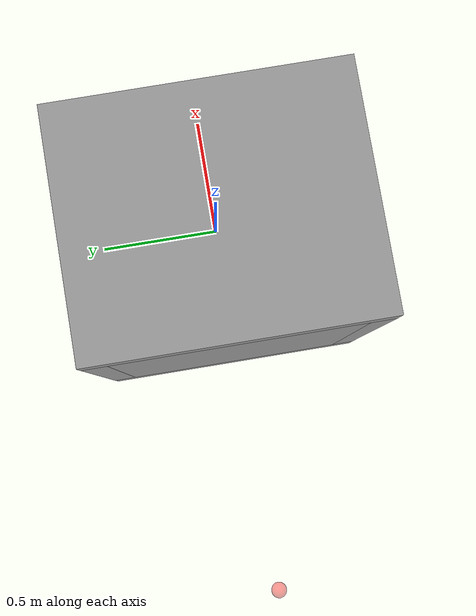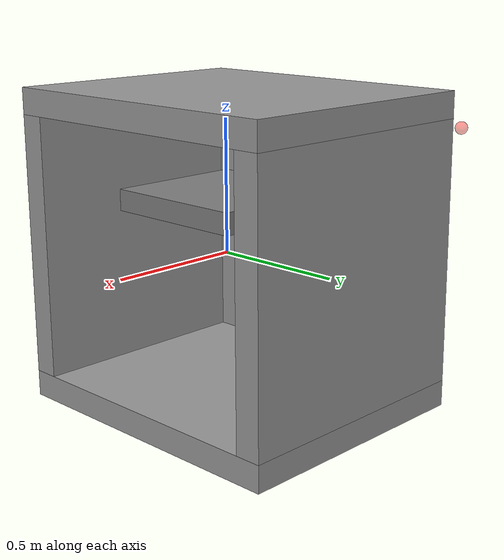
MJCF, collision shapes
<mujoco model="Skydio X2 scene">
  <include file="x2.xml"/>

  <!-- Target sphere -->
  <worldbody>
    <body name="goal" mocap="true" pos="-1.5 0 0.3">
      <site type="sphere" size=".03" rgba="1 0 0 0.4"  />
    </body>
  </worldbody>

  <worldbody>
    <geom name="frontwall" size="0.05 0.5 0.5" type="box" pos="-0.5 0 0" rgba ="0.6 0.6 0.6 0.5"/>
    <geom name="leftwall" size="0.5 0.05 0.5" type="box" pos="-0.05 0.55 0" rgba ="0.6 0.6 0.6 0.5"/>
    <geom name="rightwall" size="0.5 0.05 0.5" type="box" pos="-0.05 -0.55 0" rgba ="0.6 0.6 0.6 0.5"/>
    <geom name="topwall" size="0.5 0.6 0.05" type="box" pos="-0.05 0 0.55" rgba ="0.6 0.6 0.6 0.5"/>
    <geom name="bottomwall" size="0.5 0.6 0.05" type="box" pos="-0.05 0 -0.55" rgba ="0.6 0.6 0.6 0.5"/>
  </worldbody>

  <statistic center="0 0 0.1" extent="0.6" meansize=".05"/>

  <visual>
    <headlight diffuse="0.6 0.6 0.6" ambient="0.3 0.3 0.3" specular="0 0 0"/>
    <rgba haze="0.15 0.25 0.35 1"/>
    <global azimuth="-20" elevation="-20" ellipsoidinertia="true"/>
  </visual>

  <asset>
    <texture type="skybox" builtin="gradient" rgb1="0.3 0.5 0.7" rgb2="0 0 0" width="512" height="3072"/>
    <texture type="2d" name="groundplane" builtin="checker" mark="edge" rgb1="0.2 0.3 0.4" rgb2="0.1 0.2 0.3"
      markrgb="0.8 0.8 0.8" width="300" height="300"/>
    <material name="groundplane" texture="groundplane" texuniform="true" texrepeat="5 5" reflectance="0.2"/>
  </asset>

  <worldbody>
    <light pos="0 0 1.5" dir="0 0 -1" directional="true"/>
  </worldbody>

</mujoco>

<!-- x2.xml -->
<mujoco model="Skydio X2">
  <compiler autolimits="true" assetdir="assets"/>

  <option timestep="0.01" density="1.225" viscosity="1.8e-5"/>

  <default>
    <default class="x2">
      <geom mass="0"/>
      <motor ctrlrange="0 13"/>
      <mesh scale="0.01 0.01 0.01"/>
      <default class="visual">
        <geom group="2" type="mesh" contype="0" conaffinity="0"/>
      </default>
      <default class="collision">
        <!-- remove the body of the drone for contact since mujoco mjx does not support collision between cylinder and box as of July 2025 -->
        <geom group="3" type="box" contype="0" conaffinity="0"/>
        <default class="rotor">
          <geom type="ellipsoid" size=".13 .13 .01" contype="0" conaffinity="0"/>
        </default>
      </default>
      <site group="5"/>
    </default>
  </default>

  <asset>
    <texture type="2d" file="X2_lowpoly_texture_SpinningProps_1024.png"/>
    <material name="phong3SG" texture="X2_lowpoly_texture_SpinningProps_1024"/>
    <material name="invisible" rgba="0 0 0 0"/>

    <mesh class="x2" file="X2_lowpoly.obj"/>
  </asset>

  <worldbody>
    <light name="spotlight" mode="targetbodycom" target="x2" pos="0 -1 2"/>
    <body name="x2" pos="0 0 0.1" childclass="x2">
      <freejoint/>
      <camera name="track" pos="-1 0 .5" xyaxes="0 -1 0 1 0 2" mode="trackcom"/>
      <site name="imu" pos="0 0 .02"/>
      <geom material="phong3SG" mesh="X2_lowpoly" class="visual" quat="0 0 1 1"/>
      <geom class="collision" size=".06 .027 .02" pos=".04 0 .02"/>
      <geom class="collision" size=".06 .027 .02" pos=".04 0 .06"/>
      <geom class="collision" size=".05 .027 .02" pos="-.07 0 .065"/>
      <geom class="collision" size=".023 .017 .01" pos="-.137 .008 .065" quat="1 0 0 1"/>
      <geom name="rotor1" class="rotor" pos="-.14 -.18 .05" mass=".25"/>
      <geom name="rotor2" class="rotor" pos="-.14 .18 .05" mass=".25"/>
      <geom name="rotor3" class="rotor" pos=".14 .18 .08" mass=".25"/>
      <geom name="rotor4" class="rotor" pos=".14 -.18 .08" mass=".25"/>
      <geom size=".16 .04 .02" pos="0 0 0.02" type="ellipsoid" mass=".325" class="visual" material="invisible"/>
      <site name="thrust1" pos="-.14 -.18 .05"/>
      <site name="thrust2" pos="-.14 .18 .05"/>
      <site name="thrust3" pos=".14 .18 .08"/>
      <site name="thrust4" pos=".14 -.18 .08"/>
      <site name="tracking_site" group="1" type="sphere" size="0.03" rgba="0 1 0 1" pos="0 0 0.07"/>
      <geom name="collision_box" type="box" size=".27 .28 .04" pos="0 0 0.1" contype="1" conaffinity="1" group="4" density = "0" rgba="0.5 0.5 0.5 0.4"/>
    </body>
  </worldbody>

  <actuator>
    <motor class="x2" name="thrust1" site="thrust1" gear="0 0 1 0 0 -.0201"/>
    <motor class="x2" name="thrust2" site="thrust2" gear="0 0 1 0 0  .0201"/>
    <motor class="x2" name="thrust3" site="thrust3" gear="0 0 1 0 0  .0201"/>
    <motor class="x2" name="thrust4" site="thrust4" gear="0 0 1 0 0 -.0201"/>
  </actuator>

  <sensor>
    <gyro name="body_gyro" site="imu"/>
    <accelerometer name="body_linacc" site="imu"/>
    <framequat name="body_quat" objtype="site" objname="imu"/>
  </sensor>

  <keyframe>
    <key name="hover" qpos="0 0 .3 1 0 0 0" ctrl="3.2495625 3.2495625 3.2495625 3.2495625"/>
  </keyframe>
</mujoco>
